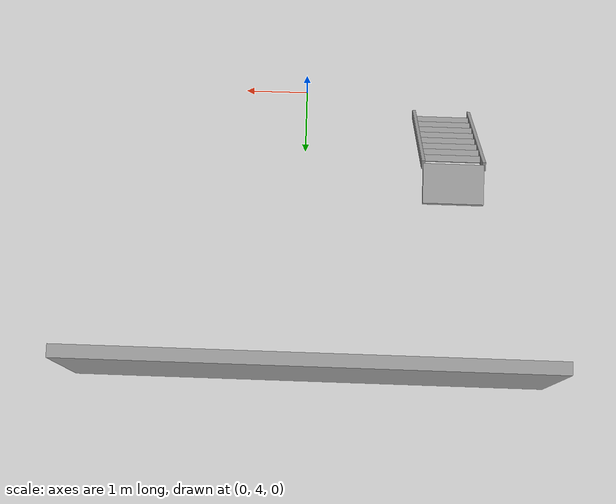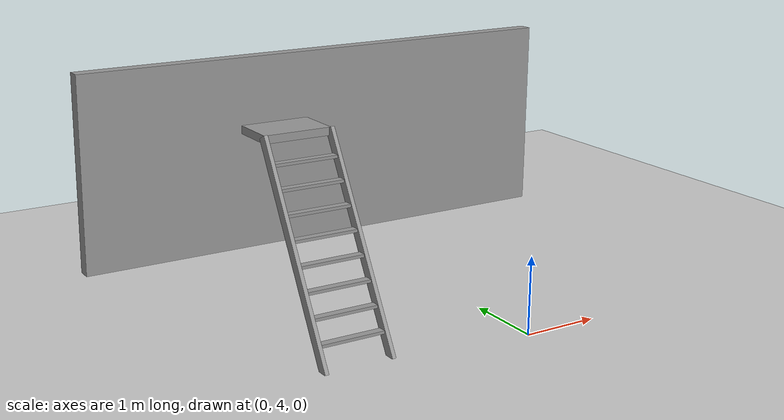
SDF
<sdf version="1.7">
 <world name="default">
  <light name="sun" type="directional">
   <pose>0 0 10 0 -0 0</pose>
   <diffuse>0.8 0.8 0.8 1</diffuse>
   <specular>0.2 0.2 0.2 1</specular>
   <attenuation>
    <range>1000</range>
    <constant>0.9</constant>
    <linear>0.01</linear>
    <quadratic>0.001</quadratic>
   </attenuation>
   <direction>-0.5 0.1 -0.9</direction>
   <spot><inner_angle>0</inner_angle><outer_angle>0</outer_angle><falloff>0</falloff></spot>
  </light>
  <model name="ground_plane">
   <static>1</static>
   <link name="link">
    <collision name="collision">
     <geometry><plane><normal>0 0 1</normal><size>100 100</size></plane></geometry>
     <surface>
      <contact><collide_bitmask>65535</collide_bitmask></contact>
      <friction><ode><mu>100</mu><mu2>50</mu2></ode></friction>
     </surface>
    </collision>
    <visual name="visual">
     <cast_shadows>0</cast_shadows>
     <geometry><plane><normal>0 0 1</normal><size>100 100</size></plane></geometry>
     <material>
      <script><uri>file://media/materials/scripts/gazebo.material</uri><name>Gazebo/Grey</name></script>
     </material>
    </visual>
   </link>
  </model>
  <gravity>0 0 -9.8</gravity>
  <magnetic_field>6e-06 2.3e-05 -4.2e-05</magnetic_field>
  <atmosphere type="adiabatic"/>
  <physics type="ode">
   <max_step_size>0.001</max_step_size>
   <real_time_factor>1</real_time_factor>
   <real_time_update_rate>1000</real_time_update_rate>
  </physics>
  <scene><ambient>0.4 0.4 0.4 1</ambient><background>0.7 0.7 0.7 1</background><shadows>1</shadows></scene>
  <spherical_coordinates>
   <surface_model>EARTH_WGS84</surface_model>
   <latitude_deg>0</latitude_deg>
   <longitude_deg>0</longitude_deg>
   <elevation>0</elevation>
   <heading_deg>0</heading_deg>
  </spherical_coordinates>
  <model name="grey_wall">
   <static>1</static>
   <link name="link">
    <pose>0 0 1.4 0 -0 0</pose>
    <collision name="collision"><geometry><box><size>7.5 0.2 2.8</size></box></geometry></collision>
    <visual name="visual">
     <cast_shadows>0</cast_shadows>
     <geometry><box><size>7.5 0.2 2.8</size></box></geometry>
     <material>
      <script>
       <uri>model://grey_wall/materials/scripts</uri>
       <uri>model://grey_wall/materials/textures</uri>
       <name>vrc/grey_wall</name>
      </script>
     </material>
    </visual>
   </link>
   <pose>-0.192304 8.69091 0 0 -0 0</pose>
  </model>
  <model name="ladder_60deg_0rails">
   <static>1</static>
   <link name="step0">
    <pose>0 0.15396 0.266667 0 -0 0</pose>
    <inertial>
     <mass>9.75482</mass>
     <inertia>
      <ixx>0.00957124</ixx>
      <iyy>0.65963</iyy>
      <izz>0.666842</izz>
      <ixy>0</ixy>
      <ixz>0</ixz>
      <iyz>0</iyz>
     </inertia>
    </inertial>
    <collision name="collision"><geometry><box><size>0.9 0.1016 0.0381</size></box></geometry></collision>
    <visual name="visual">
     <geometry><box><size>0.9 0.1016 0.0381</size></box></geometry>
     <material>
      <script><uri>file://media/materials/scripts/gazebo.material</uri><name>Gazebo/Grey</name></script>
     </material>
    </visual>
   </link>
   <link name="step1">
    <pose>0 0.30792 0.533333 0 -0 0</pose>
    <inertial>
     <mass>9.75482</mass>
     <inertia>
      <ixx>0.00957124</ixx>
      <iyy>0.65963</iyy>
      <izz>0.666842</izz>
      <ixy>0</ixy>
      <ixz>0</ixz>
      <iyz>0</iyz>
     </inertia>
    </inertial>
    <collision name="collision"><geometry><box><size>0.9 0.1016 0.0381</size></box></geometry></collision>
    <visual name="visual">
     <geometry><box><size>0.9 0.1016 0.0381</size></box></geometry>
     <material>
      <script><uri>file://media/materials/scripts/gazebo.material</uri><name>Gazebo/Grey</name></script>
     </material>
    </visual>
   </link>
   <link name="step2">
    <pose>0 0.46188 0.8 0 -0 0</pose>
    <inertial>
     <mass>9.75482</mass>
     <inertia>
      <ixx>0.00957124</ixx>
      <iyy>0.65963</iyy>
      <izz>0.666842</izz>
      <ixy>0</ixy>
      <ixz>0</ixz>
      <iyz>0</iyz>
     </inertia>
    </inertial>
    <collision name="collision"><geometry><box><size>0.9 0.1016 0.0381</size></box></geometry></collision>
    <visual name="visual">
     <geometry><box><size>0.9 0.1016 0.0381</size></box></geometry>
     <material>
      <script><uri>file://media/materials/scripts/gazebo.material</uri><name>Gazebo/Grey</name></script>
     </material>
    </visual>
   </link>
   <link name="step3">
    <pose>0 0.61584 1.06667 0 -0 0</pose>
    <inertial>
     <mass>9.75482</mass>
     <inertia>
      <ixx>0.00957124</ixx>
      <iyy>0.65963</iyy>
      <izz>0.666842</izz>
      <ixy>0</ixy>
      <ixz>0</ixz>
      <iyz>0</iyz>
     </inertia>
    </inertial>
    <collision name="collision"><geometry><box><size>0.9 0.1016 0.0381</size></box></geometry></collision>
    <visual name="visual">
     <geometry><box><size>0.9 0.1016 0.0381</size></box></geometry>
     <material>
      <script><uri>file://media/materials/scripts/gazebo.material</uri><name>Gazebo/Grey</name></script>
     </material>
    </visual>
   </link>
   <link name="step4">
    <pose>0 0.7698 1.33333 0 -0 0</pose>
    <inertial>
     <mass>9.75482</mass>
     <inertia>
      <ixx>0.00957124</ixx>
      <iyy>0.65963</iyy>
      <izz>0.666842</izz>
      <ixy>0</ixy>
      <ixz>0</ixz>
      <iyz>0</iyz>
     </inertia>
    </inertial>
    <collision name="collision"><geometry><box><size>0.9 0.1016 0.0381</size></box></geometry></collision>
    <visual name="visual">
     <geometry><box><size>0.9 0.1016 0.0381</size></box></geometry>
     <material>
      <script><uri>file://media/materials/scripts/gazebo.material</uri><name>Gazebo/Grey</name></script>
     </material>
    </visual>
   </link>
   <link name="step5">
    <pose>0 0.92376 1.6 0 -0 0</pose>
    <inertial>
     <mass>9.75482</mass>
     <inertia>
      <ixx>0.00957124</ixx>
      <iyy>0.65963</iyy>
      <izz>0.666842</izz>
      <ixy>0</ixy>
      <ixz>0</ixz>
      <iyz>0</iyz>
     </inertia>
    </inertial>
    <collision name="collision"><geometry><box><size>0.9 0.1016 0.0381</size></box></geometry></collision>
    <visual name="visual">
     <geometry><box><size>0.9 0.1016 0.0381</size></box></geometry>
     <material>
      <script><uri>file://media/materials/scripts/gazebo.material</uri><name>Gazebo/Grey</name></script>
     </material>
    </visual>
   </link>
   <link name="step6">
    <pose>0 1.07772 1.86667 0 -0 0</pose>
    <inertial>
     <mass>9.75482</mass>
     <inertia>
      <ixx>0.00957124</ixx>
      <iyy>0.65963</iyy>
      <izz>0.666842</izz>
      <ixy>0</ixy>
      <ixz>0</ixz>
      <iyz>0</iyz>
     </inertia>
    </inertial>
    <collision name="collision"><geometry><box><size>0.9 0.1016 0.0381</size></box></geometry></collision>
    <visual name="visual">
     <geometry><box><size>0.9 0.1016 0.0381</size></box></geometry>
     <material>
      <script><uri>file://media/materials/scripts/gazebo.material</uri><name>Gazebo/Grey</name></script>
     </material>
    </visual>
   </link>
   <link name="step7">
    <pose>0 1.23168 2.13333 0 -0 0</pose>
    <inertial>
     <mass>9.75482</mass>
     <inertia>
      <ixx>0.00957124</ixx>
      <iyy>0.65963</iyy>
      <izz>0.666842</izz>
      <ixy>0</ixy>
      <ixz>0</ixz>
      <iyz>0</iyz>
     </inertia>
    </inertial>
    <collision name="collision"><geometry><box><size>0.9 0.1016 0.0381</size></box></geometry></collision>
    <visual name="visual">
     <geometry><box><size>0.9 0.1016 0.0381</size></box></geometry>
     <material>
      <script><uri>file://media/materials/scripts/gazebo.material</uri><name>Gazebo/Grey</name></script>
     </material>
    </visual>
   </link>
   <link name="landing">
    <pose>0 1.68564 2.4 0 -0 0</pose>
    <inertial>
     <mass>57.6072</mass>
     <inertia><ixx>1.73518</ixx><iyy>3.89545</iyy><izz>5.6167</izz><ixy>0</ixy><ixz>0</ixz><iyz>0</iyz></inertia>
    </inertial>
    <collision name="collision"><geometry><box><size>0.9 0.6 0.1016</size></box></geometry></collision>
    <visual name="visual">
     <geometry><box><size>0.9 0.6 0.1016</size></box></geometry>
     <material>
      <script><uri>file://media/materials/scripts/gazebo.material</uri><name>Gazebo/Grey</name></script>
     </material>
    </visual>
   </link>
   <link name="left_side_wall">
    <pose>-0.45 0.69282 1.2 1.0472 -0 0</pose>
    <collision name="collision"><geometry><box><size>0.0508 2.85128 0.13</size></box></geometry></collision>
    <visual name="visual">
     <geometry><box><size>0.0508 2.85128 0.13</size></box></geometry>
     <material>
      <script><uri>file://media/materials/scripts/gazebo.material</uri><name>Gazebo/Grey</name></script>
     </material>
    </visual>
   </link>
   <link name="right_side_wall">
    <pose>0.45 0.69282 1.2 1.0472 -0 0</pose>
    <collision name="collision"><geometry><box><size>0.0508 2.85128 0.13</size></box></geometry></collision>
    <visual name="visual">
     <geometry><box><size>0.0508 2.85128 0.13</size></box></geometry>
     <material>
      <script><uri>file://media/materials/scripts/gazebo.material</uri><name>Gazebo/Grey</name></script>
     </material>
    </visual>
   </link>
   <pose>-2.22889 4.30738 0 0 -0 0</pose>
  </model>
  <light name="user_directional_light_0" type="directional">
   <pose>0.049674 0.078627 1 0 -0 0</pose>
   <diffuse>0.5 0.5 0.5 1</diffuse>
   <specular>0.1 0.1 0.1 1</specular>
   <direction>0.1 0.1 -0.9</direction>
   <attenuation>
    <range>20</range>
    <constant>0.5</constant>
    <linear>0.01</linear>
    <quadratic>0.001</quadratic>
   </attenuation>
  </light>
  <light name="user_directional_light_1" type="directional">
   <pose>15.3967 14.1005 1 0 -0 0</pose>
   <diffuse>0.5 0.5 0.5 1</diffuse>
   <specular>0.1 0.1 0.1 1</specular>
   <direction>0.1 0.1 -0.9</direction>
   <attenuation>
    <range>20</range>
    <constant>0.5</constant>
    <linear>0.01</linear>
    <quadratic>0.001</quadratic>
   </attenuation>
  </light>
  <light name="user_directional_light_2" type="directional">
   <pose>15.4148 9.62848 1 0 -0 0</pose>
   <diffuse>0.5 0.5 0.5 1</diffuse>
   <specular>0.1 0.1 0.1 1</specular>
   <direction>0.1 0.1 -0.9</direction>
   <attenuation>
    <range>20</range>
    <constant>0.5</constant>
    <linear>0.01</linear>
    <quadratic>0.001</quadratic>
   </attenuation>
  </light>
  <light name="user_directional_light_3" type="directional">
   <pose>15.1415 4.37776 1 0 -0 0</pose>
   <diffuse>0.5 0.5 0.5 1</diffuse>
   <specular>0.1 0.1 0.1 1</specular>
   <direction>0.1 0.1 -0.9</direction>
   <attenuation>
    <range>20</range>
    <constant>0.5</constant>
    <linear>0.01</linear>
    <quadratic>0.001</quadratic>
   </attenuation>
  </light>
  <light name="user_directional_light_4" type="directional">
   <pose>14.5418 0.924059 1 0 -0 0</pose>
   <diffuse>0.5 0.5 0.5 1</diffuse>
   <specular>0.1 0.1 0.1 1</specular>
   <direction>0.1 0.1 -0.9</direction>
   <attenuation>
    <range>20</range>
    <constant>0.5</constant>
    <linear>0.01</linear>
    <quadratic>0.001</quadratic>
   </attenuation>
  </light>
  <light name="user_directional_light_5" type="directional">
   <pose>12.0175 -8.6504 1 0 -0 0</pose>
   <diffuse>0.5 0.5 0.5 1</diffuse>
   <specular>0.1 0.1 0.1 1</specular>
   <direction>0.1 0.1 -0.9</direction>
   <attenuation>
    <range>20</range>
    <constant>0.5</constant>
    <linear>0.01</linear>
    <quadratic>0.001</quadratic>
   </attenuation>
  </light>
  <light name="user_directional_light_6" type="directional">
   <pose>14.965 6.37762 1 0 -0 0</pose>
   <diffuse>0.5 0.5 0.5 1</diffuse>
   <specular>0.1 0.1 0.1 1</specular>
   <direction>0.1 0.1 -0.9</direction>
   <attenuation>
    <range>20</range>
    <constant>0.5</constant>
    <linear>0.01</linear>
    <quadratic>0.001</quadratic>
   </attenuation>
  </light>
  <light name="user_directional_light_7" type="directional">
   <pose>15.3776 11.5451 1 0 -0 0</pose>
   <diffuse>0.5 0.5 0.5 1</diffuse>
   <specular>0.1 0.1 0.1 1</specular>
   <direction>0.1 0.1 -0.9</direction>
   <attenuation>
    <range>20</range>
    <constant>0.5</constant>
    <linear>0.01</linear>
    <quadratic>0.001</quadratic>
   </attenuation>
  </light>
  <light name="user_directional_light_8" type="directional">
   <pose>15.0007 17.0091 1 0 -0 0</pose>
   <diffuse>0.5 0.5 0.5 1</diffuse>
   <specular>0.1 0.1 0.1 1</specular>
   <direction>0.1 0.1 -0.9</direction>
   <attenuation>
    <range>20</range>
    <constant>0.5</constant>
    <linear>0.01</linear>
    <quadratic>0.001</quadratic>
   </attenuation>
  </light>
 </world>
</sdf>
